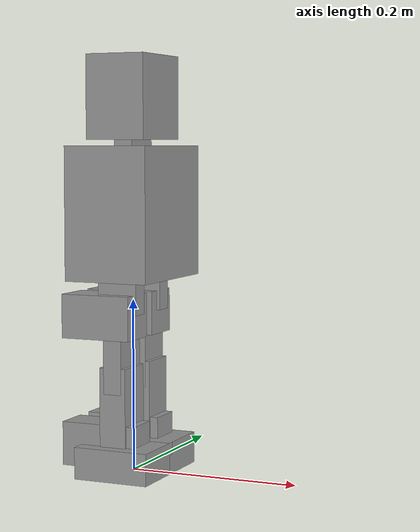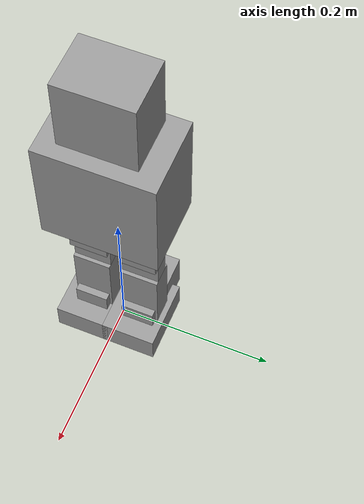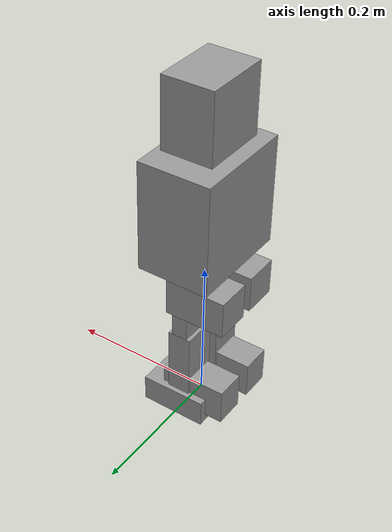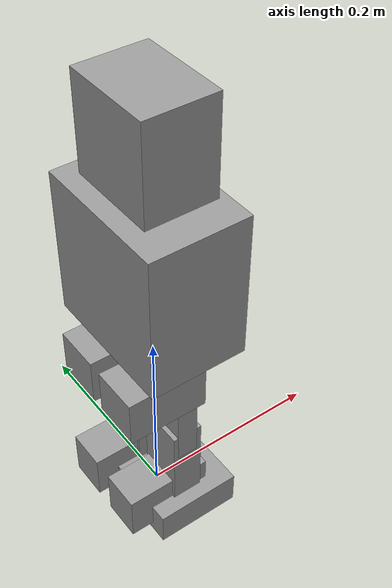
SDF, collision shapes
<?xml version='1.0'?>
<sdf version='1.6'>
  <model name='soccerbot_noarms'>
    <link name='base_link'>
    </link>
    <link name='torso'>
      <inertial>
        <mass>1</mass>
        <inertia>
          <ixx>0.003149</ixx>
          <ixy>0.000127</ixy>
          <ixz>0.000124</ixz>
          <iyy>0.004988</iyy>
          <iyz>8.9e-05</iyz>
          <izz>0.003395</izz>
        </inertia>
        <pose frame=''>0 0 0 0 -0 0</pose>
      </inertial>
      <pose frame=''>0 0 0.301418 -0.037717 1.57079 1.53308</pose>
      <gravity>1</gravity>
      <self_collide>0</self_collide>
      <kinematic>0</kinematic>
      <enable_wind>0</enable_wind>
      <visual name='visual'>
        <pose frame=''>-0.076 -0.05 -0.0725 0 -0 0</pose>
        <geometry>
          <mesh>
            <uri>model://soccer_description/meshes/Torso.stl</uri>
            <scale>0.001 0.001 0.001</scale>
          </mesh>
        </geometry>
        <material>
          <lighting>1</lighting>
          <script>
            <uri>file://media/materials/scripts/gazebo.material</uri>
            <name>Gazebo/Grey</name>
          </script>
          <shader type='vertex'>
            <normal_map>__default__</normal_map>
          </shader>
          <ambient>0.3 0.3 0.3 1</ambient>
          <diffuse>0.7 0.7 0.7 1</diffuse>
          <specular>0.01 0.01 0.01 1</specular>
          <emissive>0 0 0 1</emissive>
        </material>
        <transparency>0</transparency>
        <cast_shadows>1</cast_shadows>
      </visual>
      <collision name='collision'>
        <laser_retro>0</laser_retro>
        <max_contacts>10</max_contacts>
        <pose frame=''>0 0 0 0 -0 0</pose>
        <geometry>
          <box>
            <size>0.152 0.1 0.145</size>
          </box>
        </geometry>
        <surface>
          <friction>
            <ode>
              <mu>1</mu>
              <mu2>1</mu2>
              <fdir1>0 0 0</fdir1>
              <slip1>0</slip1>
              <slip2>0</slip2>
            </ode>
            <torsional>
              <coefficient>1</coefficient>
              <patch_radius>0</patch_radius>
              <surface_radius>0</surface_radius>
              <use_patch_radius>1</use_patch_radius>
              <ode>
                <slip>0</slip>
              </ode>
            </torsional>
          </friction>
          <bounce>
            <restitution_coefficient>0</restitution_coefficient>
            <threshold>1e+06</threshold>
          </bounce>
          <contact>
            <collide_without_contact>0</collide_without_contact>
            <collide_without_contact_bitmask>1</collide_without_contact_bitmask>
            <collide_bitmask>1</collide_bitmask>
            <ode>
              <soft_cfm>0</soft_cfm>
              <soft_erp>0.2</soft_erp>
              <kp>1e+13</kp>
              <kd>1</kd>
              <max_vel>0.01</max_vel>
              <min_depth>0</min_depth>
            </ode>
            <bullet>
              <split_impulse>1</split_impulse>
              <split_impulse_penetration_threshold>-0.01</split_impulse_penetration_threshold>
              <soft_cfm>0</soft_cfm>
              <soft_erp>0.2</soft_erp>
              <kp>1e+13</kp>
              <kd>1</kd>
            </bullet>
          </contact>
        </surface>
      </collision>
    </link>
    <link name='camera'>
      <inertial>
        <mass>1</mass>
        <inertia>
          <ixx>0.166667</ixx>
          <ixy>0</ixy>
          <ixz>0</ixz>
          <iyy>0.166667</iyy>
          <iyz>0</iyz>
          <izz>0.166667</izz>
        </inertia>
        <pose frame=''>0 0 0 0 -0 0</pose>
      </inertial>
      <pose frame=''>0.07 0 0.465818 0 -0 0</pose>
      <gravity>0</gravity>
      <self_collide>0</self_collide>
      <kinematic>0</kinematic>
      <enable_wind>0</enable_wind>
      <sensor name='camera1' type='camera'>
        <update_rate>30</update_rate>
        <camera name='__default__'>
          <horizontal_fov>1.39626</horizontal_fov>
          <image>
            <width>320</width>
            <height>240</height>
            <format>R8G8B8</format>
          </image>
          <clip>
            <near>1</near>
            <far>100</far>
          </clip>
          <noise>
            <type>gaussian</type>
            <mean>0</mean>
            <stddev>0.007</stddev>
          </noise>
        </camera>
        <always_on>1</always_on>
        <visualize>1</visualize>
        <plugin name='camera_controller' filename='libgazebo_ros_camera.so'>
          <alwaysOn>true</alwaysOn>
          <updateRate>0.0</updateRate>
          <cameraName>soccerbot/camera1</cameraName>
          <imageTopicName>image_raw</imageTopicName>
          <cameraInfoTopicName>camera_info</cameraInfoTopicName>
          <frameName>camera_link</frameName>
          <hackBaseline>0.07</hackBaseline>
          <distortionK1>0.0</distortionK1>
          <distortionK2>0.0</distortionK2>
          <distortionK3>0.0</distortionK3>
          <distortionT1>0.0</distortionT1>
          <distortionT2>0.0</distortionT2>
        </plugin>
      </sensor>
    </link>
    <link name='head'>
      <inertial>
        <mass>1</mass>
        <inertia>
          <ixx>0.166667</ixx>
          <ixy>0</ixy>
          <ixz>0</ixz>
          <iyy>0.166667</iyy>
          <iyz>0</iyz>
          <izz>0.166667</izz>
        </inertia>
        <pose frame=''>0 0 0 0 -0 0</pose>
      </inertial>
      <pose frame=''>0 0 0.395918 1.5708 -0 1.5708</pose>
      <gravity>1</gravity>
      <self_collide>0</self_collide>
      <kinematic>0</kinematic>
      <enable_wind>0</enable_wind>
      <visual name='visual'>
        <pose frame=''>0 0 0 0 -0 0</pose>
        <geometry>
          <mesh>
            <uri>model://soccer_description/meshes/Head.stl</uri>
            <scale>0.001 0.001 0.001</scale>
          </mesh>
        </geometry>
        <material>
          <lighting>1</lighting>
          <script>
            <uri>file://media/materials/scripts/gazebo.material</uri>
            <name>Gazebo/Grey</name>
          </script>
          <shader type='vertex'>
            <normal_map>__default__</normal_map>
          </shader>
          <ambient>0.3 0.3 0.3 1</ambient>
          <diffuse>0.7 0.7 0.7 1</diffuse>
          <specular>0.01 0.01 0.01 1</specular>
          <emissive>0 0 0 1</emissive>
        </material>
        <transparency>0</transparency>
        <cast_shadows>1</cast_shadows>
      </visual>
      <collision name='collision'>
        <laser_retro>0</laser_retro>
        <max_contacts>10</max_contacts>
        <pose frame=''>0 0.03648 0 0 -0 0</pose>
        <geometry>
          <box>
            <size>0.094 0.09596 0.0712</size>
          </box>
        </geometry>
        <surface>
          <friction>
            <ode>
              <mu>1</mu>
              <mu2>1</mu2>
              <fdir1>0 0 0</fdir1>
              <slip1>0</slip1>
              <slip2>0</slip2>
            </ode>
            <torsional>
              <coefficient>1</coefficient>
              <patch_radius>0</patch_radius>
              <surface_radius>0</surface_radius>
              <use_patch_radius>1</use_patch_radius>
              <ode>
                <slip>0</slip>
              </ode>
            </torsional>
          </friction>
          <bounce>
            <restitution_coefficient>0</restitution_coefficient>
            <threshold>1e+06</threshold>
          </bounce>
          <contact>
            <collide_without_contact>0</collide_without_contact>
            <collide_without_contact_bitmask>1</collide_without_contact_bitmask>
            <collide_bitmask>1</collide_bitmask>
            <ode>
              <soft_cfm>0</soft_cfm>
              <soft_erp>0.2</soft_erp>
              <kp>1e+13</kp>
              <kd>1</kd>
              <max_vel>0.01</max_vel>
              <min_depth>0</min_depth>
            </ode>
            <bullet>
              <split_impulse>1</split_impulse>
              <split_impulse_penetration_threshold>-0.01</split_impulse_penetration_threshold>
              <soft_cfm>0</soft_cfm>
              <soft_erp>0.2</soft_erp>
              <kp>1e+13</kp>
              <kd>1</kd>
            </bullet>
          </contact>
        </surface>
      </collision>
    </link>
    <link name='left_ankle'>
      <inertial>
        <mass>1</mass>
        <inertia>
          <ixx>0.166667</ixx>
          <ixy>0</ixy>
          <ixz>0</ixz>
          <iyy>0.166667</iyy>
          <iyz>0</iyz>
          <izz>0.166667</izz>
        </inertia>
        <pose frame=''>0 0 0 1.57073 -0 0</pose>
      </inertial>
      <pose frame=''>0 -0.0315 0.025328 1.57073 -0 0</pose>
      <gravity>1</gravity>
      <self_collide>0</self_collide>
      <kinematic>0</kinematic>
      <enable_wind>0</enable_wind>
      <visual name='visual'>
        <pose frame=''>0 0 0 0 -0 0</pose>
        <geometry>
          <mesh>
            <uri>model://soccer_description/meshes/Left Ankle.stl</uri>
            <scale>0.001 0.001 0.001</scale>
          </mesh>
        </geometry>
        <material>
          <lighting>1</lighting>
          <script>
            <uri>file://media/materials/scripts/gazebo.material</uri>
            <name>Gazebo/Grey</name>
          </script>
          <shader type='vertex'>
            <normal_map>__default__</normal_map>
          </shader>
          <ambient>0.3 0.3 0.3 1</ambient>
          <diffuse>0.7 0.7 0.7 1</diffuse>
          <specular>0.01 0.01 0.01 1</specular>
          <emissive>0 0 0 1</emissive>
        </material>
        <transparency>0</transparency>
        <cast_shadows>1</cast_shadows>
      </visual>
      <collision name='collision'>
        <laser_retro>0</laser_retro>
        <max_contacts>10</max_contacts>
        <pose frame=''>-0.020145 0.01031 0 0 -0 0</pose>
        <geometry>
          <box>
            <size>0.090769 0.0506 0.042</size>
          </box>
        </geometry>
        <surface>
          <friction>
            <ode>
              <mu>1</mu>
              <mu2>1</mu2>
              <fdir1>0 0 0</fdir1>
              <slip1>0</slip1>
              <slip2>0</slip2>
            </ode>
            <torsional>
              <coefficient>1</coefficient>
              <patch_radius>0</patch_radius>
              <surface_radius>0</surface_radius>
              <use_patch_radius>1</use_patch_radius>
              <ode>
                <slip>0</slip>
              </ode>
            </torsional>
          </friction>
          <bounce>
            <restitution_coefficient>0</restitution_coefficient>
            <threshold>1e+06</threshold>
          </bounce>
          <contact>
            <collide_without_contact>0</collide_without_contact>
            <collide_without_contact_bitmask>1</collide_without_contact_bitmask>
            <collide_bitmask>1</collide_bitmask>
            <ode>
              <soft_cfm>0</soft_cfm>
              <soft_erp>0.2</soft_erp>
              <kp>1e+13</kp>
              <kd>1</kd>
              <max_vel>0.01</max_vel>
              <min_depth>0</min_depth>
            </ode>
            <bullet>
              <split_impulse>1</split_impulse>
              <split_impulse_penetration_threshold>-0.01</split_impulse_penetration_threshold>
              <soft_cfm>0</soft_cfm>
              <soft_erp>0.2</soft_erp>
              <kp>1e+13</kp>
              <kd>1</kd>
            </bullet>
          </contact>
        </surface>
      </collision>
    </link>
    <link name='left_calve'>
      <inertial>
        <mass>1</mass>
        <inertia>
          <ixx>0.166667</ixx>
          <ixy>0</ixy>
          <ixz>0</ixz>
          <iyy>0.166667</iyy>
          <iyz>0</iyz>
          <izz>0.166667</izz>
        </inertia>
        <pose frame=''>0 0 0 0 -0 0</pose>
      </inertial>
      <pose frame=''>0 -0.0315 0.025328 1.57079 -0 0</pose>
      <gravity>1</gravity>
      <self_collide>0</self_collide>
      <kinematic>0</kinematic>
      <enable_wind>0</enable_wind>
      <visual name='visual'>
        <pose frame=''>0 0 0 0 -0 0</pose>
        <geometry>
          <mesh>
            <uri>model://soccer_description/meshes/Left Calve.stl</uri>
            <scale>0.001 0.001 0.001</scale>
          </mesh>
        </geometry>
        <material>
          <lighting>1</lighting>
          <script>
            <uri>file://media/materials/scripts/gazebo.material</uri>
            <name>Gazebo/Grey</name>
          </script>
          <shader type='vertex'>
            <normal_map>__default__</normal_map>
          </shader>
          <ambient>0.3 0.3 0.3 1</ambient>
          <diffuse>0.7 0.7 0.7 1</diffuse>
          <specular>0.01 0.01 0.01 1</specular>
          <emissive>0 0 0 1</emissive>
        </material>
        <transparency>0</transparency>
        <cast_shadows>1</cast_shadows>
      </visual>
      <collision name='collision'>
        <laser_retro>0</laser_retro>
        <max_contacts>10</max_contacts>
        <pose frame=''>0 0.04885 0 0 -0 0</pose>
        <geometry>
          <box>
            <size>0.031883 0.105683 0.048</size>
          </box>
        </geometry>
        <surface>
          <friction>
            <ode>
              <mu>1</mu>
              <mu2>1</mu2>
              <fdir1>0 0 0</fdir1>
              <slip1>0</slip1>
              <slip2>0</slip2>
            </ode>
            <torsional>
              <coefficient>1</coefficient>
              <patch_radius>0</patch_radius>
              <surface_radius>0</surface_radius>
              <use_patch_radius>1</use_patch_radius>
              <ode>
                <slip>0</slip>
              </ode>
            </torsional>
          </friction>
          <bounce>
            <restitution_coefficient>0</restitution_coefficient>
            <threshold>1e+06</threshold>
          </bounce>
          <contact>
            <collide_without_contact>0</collide_without_contact>
            <collide_without_contact_bitmask>1</collide_without_contact_bitmask>
            <collide_bitmask>1</collide_bitmask>
            <ode>
              <soft_cfm>0</soft_cfm>
              <soft_erp>0.2</soft_erp>
              <kp>1e+13</kp>
              <kd>1</kd>
              <max_vel>0.01</max_vel>
              <min_depth>0</min_depth>
            </ode>
            <bullet>
              <split_impulse>1</split_impulse>
              <split_impulse_penetration_threshold>-0.01</split_impulse_penetration_threshold>
              <soft_cfm>0</soft_cfm>
              <soft_erp>0.2</soft_erp>
              <kp>1e+13</kp>
              <kd>1</kd>
            </bullet>
          </contact>
        </surface>
      </collision>
    </link>
    <link name='left_foot'>
      <inertial>
        <mass>1</mass>
        <inertia>
          <ixx>0.166667</ixx>
          <ixy>0</ixy>
          <ixz>0</ixz>
          <iyy>0.166667</iyy>
          <iyz>0</iyz>
          <izz>0.166667</izz>
        </inertia>
        <pose frame=''>0 0 0 1.57073 -0 0</pose>
      </inertial>
      <pose frame=''>0 -0.0315 0.025328 1.57073 -0 0</pose>
      <gravity>1</gravity>
      <self_collide>0</self_collide>
      <kinematic>0</kinematic>
      <enable_wind>0</enable_wind>
      <visual name='visual'>
        <pose frame=''>0 0 0 0 -0 0</pose>
        <geometry>
          <mesh>
            <uri>model://soccer_description/meshes/Left Foot.stl</uri>
            <scale>0.001 0.001 0.001</scale>
          </mesh>
        </geometry>
        <material>
          <lighting>1</lighting>
          <script>
            <uri>file://media/materials/scripts/gazebo.material</uri>
            <name>Gazebo/Grey</name>
          </script>
          <shader type='vertex'>
            <normal_map>__default__</normal_map>
          </shader>
          <ambient>0.3 0.3 0.3 1</ambient>
          <diffuse>0.7 0.7 0.7 1</diffuse>
          <specular>0.01 0.01 0.01 1</specular>
          <emissive>0 0 0 1</emissive>
        </material>
        <transparency>0</transparency>
        <cast_shadows>1</cast_shadows>
      </visual>
      <collision name='collision'>
        <laser_retro>0</laser_retro>
        <max_contacts>10</max_contacts>
        <pose frame=''>0.004015 -0.00737 0.00385 0 -0 0</pose>
        <geometry>
          <box>
            <size>0.09 0.03674 0.07</size>
          </box>
        </geometry>
        <surface>
          <friction>
            <ode>
              <mu>1</mu>
              <mu2>1</mu2>
              <fdir1>0 0 0</fdir1>
              <slip1>0</slip1>
              <slip2>0</slip2>
            </ode>
            <torsional>
              <coefficient>1</coefficient>
              <patch_radius>0</patch_radius>
              <surface_radius>0</surface_radius>
              <use_patch_radius>1</use_patch_radius>
              <ode>
                <slip>0</slip>
              </ode>
            </torsional>
          </friction>
          <bounce>
            <restitution_coefficient>0</restitution_coefficient>
            <threshold>1e+06</threshold>
          </bounce>
          <contact>
            <collide_without_contact>0</collide_without_contact>
            <collide_without_contact_bitmask>1</collide_without_contact_bitmask>
            <collide_bitmask>1</collide_bitmask>
            <ode>
              <soft_cfm>0</soft_cfm>
              <soft_erp>0.2</soft_erp>
              <kp>1e+13</kp>
              <kd>1</kd>
              <max_vel>0.01</max_vel>
              <min_depth>0</min_depth>
            </ode>
            <bullet>
              <split_impulse>1</split_impulse>
              <split_impulse_penetration_threshold>-0.01</split_impulse_penetration_threshold>
              <soft_cfm>0</soft_cfm>
              <soft_erp>0.2</soft_erp>
              <kp>1e+13</kp>
              <kd>1</kd>
            </bullet>
          </contact>
        </surface>
      </collision>
    </link>
    <link name='left_hip_front'>
      <inertial>
        <mass>1</mass>
        <inertia>
          <ixx>0.166667</ixx>
          <ixy>0</ixy>
          <ixz>0</ixz>
          <iyy>0.166667</iyy>
          <iyz>0</iyz>
          <izz>0.166667</izz>
        </inertia>
        <pose frame=''>0 0 0 0 -0 0</pose>
      </inertial>
      <pose frame=''>0 -0.0315 0.197 1.57079 -0 0</pose>
      <gravity>1</gravity>
      <self_collide>0</self_collide>
      <kinematic>0</kinematic>
      <enable_wind>0</enable_wind>
      <visual name='visual'>
        <pose frame=''>0 0 0 0 -0 0</pose>
        <geometry>
          <mesh>
            <uri>model://soccer_description/meshes/Left Hip Front.stl</uri>
            <scale>0.001 0.001 0.001</scale>
          </mesh>
        </geometry>
        <material>
          <lighting>1</lighting>
          <script>
            <uri>file://media/materials/scripts/gazebo.material</uri>
            <name>Gazebo/Grey</name>
          </script>
          <shader type='vertex'>
            <normal_map>__default__</normal_map>
          </shader>
          <ambient>0.3 0.3 0.3 1</ambient>
          <diffuse>0.7 0.7 0.7 1</diffuse>
          <specular>0.01 0.01 0.01 1</specular>
          <emissive>0 0 0 1</emissive>
        </material>
        <transparency>0</transparency>
        <cast_shadows>1</cast_shadows>
      </visual>
      <collision name='collision'>
        <laser_retro>0</laser_retro>
        <max_contacts>10</max_contacts>
        <pose frame=''>-0.02187 -0.013322 0 0 -0 0</pose>
        <geometry>
          <box>
            <size>0.083747 0.0506 0.04885</size>
          </box>
        </geometry>
        <surface>
          <friction>
            <ode>
              <mu>1</mu>
              <mu2>1</mu2>
              <fdir1>0 0 0</fdir1>
              <slip1>0</slip1>
              <slip2>0</slip2>
            </ode>
            <torsional>
              <coefficient>1</coefficient>
              <patch_radius>0</patch_radius>
              <surface_radius>0</surface_radius>
              <use_patch_radius>1</use_patch_radius>
              <ode>
                <slip>0</slip>
              </ode>
            </torsional>
          </friction>
          <bounce>
            <restitution_coefficient>0</restitution_coefficient>
            <threshold>1e+06</threshold>
          </bounce>
          <contact>
            <collide_without_contact>0</collide_without_contact>
            <collide_without_contact_bitmask>1</collide_without_contact_bitmask>
            <collide_bitmask>1</collide_bitmask>
            <ode>
              <soft_cfm>0</soft_cfm>
              <soft_erp>0.2</soft_erp>
              <kp>1e+13</kp>
              <kd>1</kd>
              <max_vel>0.01</max_vel>
              <min_depth>0</min_depth>
            </ode>
            <bullet>
              <split_impulse>1</split_impulse>
              <split_impulse_penetration_threshold>-0.01</split_impulse_penetration_threshold>
              <soft_cfm>0</soft_cfm>
              <soft_erp>0.2</soft_erp>
              <kp>1e+13</kp>
              <kd>1</kd>
            </bullet>
          </contact>
        </surface>
      </collision>
    </link>
    <link name='left_hip_side'>
      <inertial>
        <mass>1</mass>
        <inertia>
          <ixx>0.166667</ixx>
          <ixy>0</ixy>
          <ixz>0</ixz>
          <iyy>0.166667</iyy>
          <iyz>0</iyz>
          <izz>0.166667</izz>
        </inertia>
        <pose frame=''>0 0 0 0 -0 0</pose>
      </inertial>
      <pose frame=''>0 -0.031494 0.197 1.5708 -0 1.5708</pose>
      <gravity>1</gravity>
      <self_collide>0</self_collide>
      <kinematic>0</kinematic>
      <enable_wind>0</enable_wind>
      <visual name='visual'>
        <pose frame=''>0 0 0 0 -0 0</pose>
        <geometry>
          <mesh>
            <uri>model://soccer_description/meshes/Left Hip Side.stl</uri>
            <scale>0.001 0.001 0.001</scale>
          </mesh>
        </geometry>
        <material>
          <lighting>1</lighting>
          <script>
            <uri>file://media/materials/scripts/gazebo.material</uri>
            <name>Gazebo/Grey</name>
          </script>
          <shader type='vertex'>
            <normal_map>__default__</normal_map>
          </shader>
          <ambient>0.3 0.3 0.3 1</ambient>
          <diffuse>0.7 0.7 0.7 1</diffuse>
          <specular>0.01 0.01 0.01 1</specular>
          <emissive>0 0 0 1</emissive>
        </material>
        <transparency>0</transparency>
        <cast_shadows>1</cast_shadows>
      </visual>
      <collision name='collision'>
        <laser_retro>0</laser_retro>
        <max_contacts>10</max_contacts>
        <pose frame=''>0 0.009 0 0 -0 0</pose>
        <geometry>
          <box>
            <size>0.022 0.039 0.0475</size>
          </box>
        </geometry>
        <surface>
          <friction>
            <ode>
              <mu>1</mu>
              <mu2>1</mu2>
              <fdir1>0 0 0</fdir1>
              <slip1>0</slip1>
              <slip2>0</slip2>
            </ode>
            <torsional>
              <coefficient>1</coefficient>
              <patch_radius>0</patch_radius>
              <surface_radius>0</surface_radius>
              <use_patch_radius>1</use_patch_radius>
              <ode>
                <slip>0</slip>
              </ode>
            </torsional>
          </friction>
          <bounce>
            <restitution_coefficient>0</restitution_coefficient>
            <threshold>1e+06</threshold>
          </bounce>
          <contact>
            <collide_without_contact>0</collide_without_contact>
            <collide_without_contact_bitmask>1</collide_without_contact_bitmask>
            <collide_bitmask>1</collide_bitmask>
            <ode>
              <soft_cfm>0</soft_cfm>
              <soft_erp>0.2</soft_erp>
              <kp>1e+13</kp>
              <kd>1</kd>
              <max_vel>0.01</max_vel>
              <min_depth>0</min_depth>
            </ode>
            <bullet>
              <split_impulse>1</split_impulse>
              <split_impulse_penetration_threshold>-0.01</split_impulse_penetration_threshold>
              <soft_cfm>0</soft_cfm>
              <soft_erp>0.2</soft_erp>
              <kp>1e+13</kp>
              <kd>1</kd>
            </bullet>
          </contact>
        </surface>
      </collision>
    </link>
    <link name='left_thigh'>
      <inertial>
        <mass>1</mass>
        <inertia>
          <ixx>0.166667</ixx>
          <ixy>0</ixy>
          <ixz>0</ixz>
          <iyy>0.166667</iyy>
          <iyz>0</iyz>
          <izz>0.166667</izz>
        </inertia>
        <pose frame=''>0 0 0 0 -0 0</pose>
      </inertial>
      <pose frame=''>0 -0.0315 0.197 1.5708 -0 0</pose>
      <gravity>1</gravity>
      <self_collide>0</self_collide>
      <kinematic>0</kinematic>
      <enable_wind>0</enable_wind>
      <visual name='visual'>
        <pose frame=''>0 0 0 0 -0 0</pose>
        <geometry>
          <mesh>
            <uri>model://soccer_description/meshes/Left Thigh.stl</uri>
            <scale>0.001 0.001 0.001</scale>
          </mesh>
        </geometry>
        <material>
          <lighting>1</lighting>
          <script>
            <uri>file://media/materials/scripts/gazebo.material</uri>
            <name>Gazebo/Grey</name>
          </script>
          <shader type='vertex'>
            <normal_map>__default__</normal_map>
          </shader>
          <ambient>0.3 0.3 0.3 1</ambient>
          <diffuse>0.7 0.7 0.7 1</diffuse>
          <specular>0.01 0.01 0.01 1</specular>
          <emissive>0 0 0 1</emissive>
        </material>
        <transparency>0</transparency>
        <cast_shadows>1</cast_shadows>
      </visual>
      <collision name='collision'>
        <laser_retro>0</laser_retro>
        <max_contacts>10</max_contacts>
        <pose frame=''>0 -0.0445 0 0 -0 0</pose>
        <geometry>
          <box>
            <size>0.022 0.111 0.048</size>
          </box>
        </geometry>
        <surface>
          <friction>
            <ode>
              <mu>1</mu>
              <mu2>1</mu2>
              <fdir1>0 0 0</fdir1>
              <slip1>0</slip1>
              <slip2>0</slip2>
            </ode>
            <torsional>
              <coefficient>1</coefficient>
              <patch_radius>0</patch_radius>
              <surface_radius>0</surface_radius>
              <use_patch_radius>1</use_patch_radius>
              <ode>
                <slip>0</slip>
              </ode>
            </torsional>
          </friction>
          <bounce>
            <restitution_coefficient>0</restitution_coefficient>
            <threshold>1e+06</threshold>
          </bounce>
          <contact>
            <collide_without_contact>0</collide_without_contact>
            <collide_without_contact_bitmask>1</collide_without_contact_bitmask>
            <collide_bitmask>1</collide_bitmask>
            <ode>
              <soft_cfm>0</soft_cfm>
              <soft_erp>0.2</soft_erp>
              <kp>1e+13</kp>
              <kd>1</kd>
              <max_vel>0.01</max_vel>
              <min_depth>0</min_depth>
            </ode>
            <bullet>
              <split_impulse>1</split_impulse>
              <split_impulse_penetration_threshold>-0.01</split_impulse_penetration_threshold>
              <soft_cfm>0</soft_cfm>
              <soft_erp>0.2</soft_erp>
              <kp>1e+13</kp>
              <kd>1</kd>
            </bullet>
          </contact>
        </surface>
      </collision>
    </link>
    <link name='neck'>
      <inertial>
        <mass>1</mass>
        <inertia>
          <ixx>0.166667</ixx>
          <ixy>0</ixy>
          <ixz>0</ixz>
          <iyy>0.166667</iyy>
          <iyz>0</iyz>
          <izz>0.166667</izz>
        </inertia>
        <pose frame=''>0 0 0 0 -0 0</pose>
      </inertial>
      <pose frame=''>0 0 0.373918 1.57079 -0 1.57079</pose>
      <gravity>1</gravity>
      <self_collide>0</self_collide>
      <kinematic>0</kinematic>
      <enable_wind>0</enable_wind>
      <visual name='visual'>
        <pose frame=''>0 0 0 0 -0 0</pose>
        <geometry>
          <mesh>
            <uri>model://soccer_description/meshes/Neck.stl</uri>
            <scale>0.001 0.001 0.001</scale>
          </mesh>
        </geometry>
        <material>
          <lighting>1</lighting>
          <script>
            <uri>file://media/materials/scripts/gazebo.material</uri>
            <name>Gazebo/Grey</name>
          </script>
          <shader type='vertex'>
            <normal_map>__default__</normal_map>
          </shader>
          <ambient>0.3 0.3 0.3 1</ambient>
          <diffuse>0.7 0.7 0.7 1</diffuse>
          <specular>0.01 0.01 0.01 1</specular>
          <emissive>0 0 0 1</emissive>
        </material>
        <transparency>0</transparency>
        <cast_shadows>1</cast_shadows>
      </visual>
      <collision name='collision'>
        <laser_retro>0</laser_retro>
        <max_contacts>10</max_contacts>
        <pose frame=''>0 0.0165 0 0 -0 0</pose>
        <geometry>
          <box>
            <size>0.0523 0.033 0.022</size>
          </box>
        </geometry>
        <surface>
          <friction>
            <ode>
              <mu>1</mu>
              <mu2>1</mu2>
              <fdir1>0 0 0</fdir1>
              <slip1>0</slip1>
              <slip2>0</slip2>
            </ode>
            <torsional>
              <coefficient>1</coefficient>
              <patch_radius>0</patch_radius>
              <surface_radius>0</surface_radius>
              <use_patch_radius>1</use_patch_radius>
              <ode>
                <slip>0</slip>
              </ode>
            </torsional>
          </friction>
          <bounce>
            <restitution_coefficient>0</restitution_coefficient>
            <threshold>1e+06</threshold>
          </bounce>
          <contact>
            <collide_without_contact>0</collide_without_contact>
            <collide_without_contact_bitmask>1</collide_without_contact_bitmask>
            <collide_bitmask>1</collide_bitmask>
            <ode>
              <soft_cfm>0</soft_cfm>
              <soft_erp>0.2</soft_erp>
              <kp>1e+13</kp>
              <kd>1</kd>
              <max_vel>0.01</max_vel>
              <min_depth>0</min_depth>
            </ode>
            <bullet>
              <split_impulse>1</split_impulse>
              <split_impulse_penetration_threshold>-0.01</split_impulse_penetration_threshold>
              <soft_cfm>0</soft_cfm>
              <soft_erp>0.2</soft_erp>
              <kp>1e+13</kp>
              <kd>1</kd>
            </bullet>
          </contact>
        </surface>
      </collision>
    </link>
    <link name='right_ankle'>
      <inertial>
        <mass>1</mass>
        <inertia>
          <ixx>0.166667</ixx>
          <ixy>0</ixy>
          <ixz>0</ixz>
          <iyy>0.166667</iyy>
          <iyz>0</iyz>
          <izz>0.166667</izz>
        </inertia>
        <pose frame=''>0 0 0 1.57073 -0 0</pose>
      </inertial>
      <pose frame=''>0 0.031494 0.025328 1.57073 -0 0</pose>
      <gravity>1</gravity>
      <self_collide>0</self_collide>
      <kinematic>0</kinematic>
      <enable_wind>0</enable_wind>
      <visual name='visual'>
        <pose frame=''>0 0 0 0 -0 0</pose>
        <geometry>
          <mesh>
            <uri>model://soccer_description/meshes/Right Ankle.stl</uri>
            <scale>0.001 0.001 0.001</scale>
          </mesh>
        </geometry>
        <material>
          <lighting>1</lighting>
          <script>
            <uri>file://media/materials/scripts/gazebo.material</uri>
            <name>Gazebo/Grey</name>
          </script>
          <shader type='vertex'>
            <normal_map>__default__</normal_map>
          </shader>
          <ambient>0.3 0.3 0.3 1</ambient>
          <diffuse>0.7 0.7 0.7 1</diffuse>
          <specular>0.01 0.01 0.01 1</specular>
          <emissive>0 0 0 1</emissive>
        </material>
        <transparency>0</transparency>
        <cast_shadows>1</cast_shadows>
      </visual>
      <collision name='collision'>
        <laser_retro>0</laser_retro>
        <max_contacts>10</max_contacts>
        <pose frame=''>-0.020145 0.01031 0 0 -0 0</pose>
        <geometry>
          <box>
            <size>0.090769 0.0506 0.042</size>
          </box>
        </geometry>
        <surface>
          <friction>
            <ode>
              <mu>1</mu>
              <mu2>1</mu2>
              <fdir1>0 0 0</fdir1>
              <slip1>0</slip1>
              <slip2>0</slip2>
            </ode>
            <torsional>
              <coefficient>1</coefficient>
              <patch_radius>0</patch_radius>
              <surface_radius>0</surface_radius>
              <use_patch_radius>1</use_patch_radius>
              <ode>
                <slip>0</slip>
              </ode>
            </torsional>
          </friction>
          <bounce>
            <restitution_coefficient>0</restitution_coefficient>
            <threshold>1e+06</threshold>
          </bounce>
          <contact>
            <collide_without_contact>0</collide_without_contact>
            <collide_without_contact_bitmask>1</collide_without_contact_bitmask>
            <collide_bitmask>1</collide_bitmask>
            <ode>
              <soft_cfm>0</soft_cfm>
              <soft_erp>0.2</soft_erp>
              <kp>1e+13</kp>
              <kd>1</kd>
              <max_vel>0.01</max_vel>
              <min_depth>0</min_depth>
            </ode>
            <bullet>
              <split_impulse>1</split_impulse>
              <split_impulse_penetration_threshold>-0.01</split_impulse_penetration_threshold>
              <soft_cfm>0</soft_cfm>
              <soft_erp>0.2</soft_erp>
              <kp>1e+13</kp>
              <kd>1</kd>
            </bullet>
          </contact>
        </surface>
      </collision>
    </link>
    <link name='right_calve'>
      <inertial>
        <mass>1</mass>
        <inertia>
          <ixx>0.166667</ixx>
          <ixy>0</ixy>
          <ixz>0</ixz>
          <iyy>0.166667</iyy>
          <iyz>0</iyz>
          <izz>0.166667</izz>
        </inertia>
        <pose frame=''>0 0 0 0 -0 0</pose>
      </inertial>
      <pose frame=''>0 0.031494 0.025328 1.57079 -0 0</pose>
      <gravity>1</gravity>
      <self_collide>0</self_collide>
      <kinematic>0</kinematic>
      <enable_wind>0</enable_wind>
      <visual name='visual'>
        <pose frame=''>0 0 0 0 -0 0</pose>
        <geometry>
          <mesh>
            <uri>model://soccer_description/meshes/Right Calve.stl</uri>
            <scale>0.001 0.001 0.001</scale>
          </mesh>
        </geometry>
        <material>
          <lighting>1</lighting>
          <script>
            <uri>file://media/materials/scripts/gazebo.material</uri>
            <name>Gazebo/Grey</name>
          </script>
          <shader type='vertex'>
            <normal_map>__default__</normal_map>
          </shader>
          <ambient>0.3 0.3 0.3 1</ambient>
          <diffuse>0.7 0.7 0.7 1</diffuse>
          <specular>0.01 0.01 0.01 1</specular>
          <emissive>0 0 0 1</emissive>
        </material>
        <transparency>0</transparency>
        <cast_shadows>1</cast_shadows>
      </visual>
      <collision name='collision'>
        <laser_retro>0</laser_retro>
        <max_contacts>10</max_contacts>
        <pose frame=''>0 0.04885 0 0 -0 0</pose>
        <geometry>
          <box>
            <size>0.031883 0.105683 0.048</size>
          </box>
        </geometry>
        <surface>
          <friction>
            <ode>
              <mu>1</mu>
              <mu2>1</mu2>
              <fdir1>0 0 0</fdir1>
              <slip1>0</slip1>
              <slip2>0</slip2>
            </ode>
            <torsional>
              <coefficient>1</coefficient>
              <patch_radius>0</patch_radius>
              <surface_radius>0</surface_radius>
              <use_patch_radius>1</use_patch_radius>
              <ode>
                <slip>0</slip>
              </ode>
            </torsional>
          </friction>
          <bounce>
            <restitution_coefficient>0</restitution_coefficient>
            <threshold>1e+06</threshold>
          </bounce>
          <contact>
            <collide_without_contact>0</collide_without_contact>
            <collide_without_contact_bitmask>1</collide_without_contact_bitmask>
            <collide_bitmask>1</collide_bitmask>
            <ode>
              <soft_cfm>0</soft_cfm>
              <soft_erp>0.2</soft_erp>
              <kp>1e+13</kp>
              <kd>1</kd>
              <max_vel>0.01</max_vel>
              <min_depth>0</min_depth>
            </ode>
            <bullet>
              <split_impulse>1</split_impulse>
              <split_impulse_penetration_threshold>-0.01</split_impulse_penetration_threshold>
              <soft_cfm>0</soft_cfm>
              <soft_erp>0.2</soft_erp>
              <kp>1e+13</kp>
              <kd>1</kd>
            </bullet>
          </contact>
        </surface>
      </collision>
    </link>
    <link name='right_foot'>
      <inertial>
        <mass>1</mass>
        <inertia>
          <ixx>0.166667</ixx>
          <ixy>0</ixy>
          <ixz>0</ixz>
          <iyy>0.166667</iyy>
          <iyz>0</iyz>
          <izz>0.166667</izz>
        </inertia>
        <pose frame=''>0 0 0 1.57073 -0 0</pose>
      </inertial>
      <pose frame=''>0 0.0315 0.025328 1.57073 -0 0</pose>
      <gravity>1</gravity>
      <self_collide>0</self_collide>
      <kinematic>0</kinematic>
      <enable_wind>0</enable_wind>
      <visual name='visual'>
        <pose frame=''>0 0 0 0 -0 0</pose>
        <geometry>
          <mesh>
            <uri>model://soccer_description/meshes/Right foot.stl</uri>
            <scale>0.001 0.001 0.001</scale>
          </mesh>
        </geometry>
        <material>
          <lighting>1</lighting>
          <script>
            <uri>file://media/materials/scripts/gazebo.material</uri>
            <name>Gazebo/Grey</name>
          </script>
          <shader type='vertex'>
            <normal_map>__default__</normal_map>
          </shader>
          <ambient>0.3 0.3 0.3 1</ambient>
          <diffuse>0.7 0.7 0.7 1</diffuse>
          <specular>0.01 0.01 0.01 1</specular>
          <emissive>0 0 0 1</emissive>
        </material>
        <transparency>0</transparency>
        <cast_shadows>1</cast_shadows>
      </visual>
      <collision name='collision'>
        <laser_retro>0</laser_retro>
        <max_contacts>10</max_contacts>
        <pose frame=''>0.004015 -0.00737 0.00385 0 -0 0</pose>
        <geometry>
          <box>
            <size>0.09 0.03674 0.07</size>
          </box>
        </geometry>
        <surface>
          <friction>
            <ode>
              <mu>1</mu>
              <mu2>1</mu2>
              <fdir1>0 0 0</fdir1>
              <slip1>0</slip1>
              <slip2>0</slip2>
            </ode>
            <torsional>
              <coefficient>1</coefficient>
              <patch_radius>0</patch_radius>
              <surface_radius>0</surface_radius>
              <use_patch_radius>1</use_patch_radius>
              <ode>
                <slip>0</slip>
              </ode>
            </torsional>
          </friction>
          <bounce>
            <restitution_coefficient>0</restitution_coefficient>
            <threshold>1e+06</threshold>
          </bounce>
          <contact>
            <collide_without_contact>0</collide_without_contact>
            <collide_without_contact_bitmask>1</collide_without_contact_bitmask>
            <collide_bitmask>1</collide_bitmask>
            <ode>
              <soft_cfm>0</soft_cfm>
              <soft_erp>0.2</soft_erp>
              <kp>1e+13</kp>
              <kd>1</kd>
              <max_vel>0.01</max_vel>
              <min_depth>0</min_depth>
            </ode>
            <bullet>
              <split_impulse>1</split_impulse>
              <split_impulse_penetration_threshold>-0.01</split_impulse_penetration_threshold>
              <soft_cfm>0</soft_cfm>
              <soft_erp>0.2</soft_erp>
              <kp>1e+13</kp>
              <kd>1</kd>
            </bullet>
          </contact>
        </surface>
      </collision>
    </link>
    <link name='right_hip_front'>
      <inertial>
        <mass>1</mass>
        <inertia>
          <ixx>0.166667</ixx>
          <ixy>0</ixy>
          <ixz>0</ixz>
          <iyy>0.166667</iyy>
          <iyz>0</iyz>
          <izz>0.166667</izz>
        </inertia>
        <pose frame=''>0 0 0 0 -0 0</pose>
      </inertial>
      <pose frame=''>0 0.031494 0.197 1.57079 -0 0</pose>
      <gravity>1</gravity>
      <self_collide>0</self_collide>
      <kinematic>0</kinematic>
      <enable_wind>0</enable_wind>
      <visual name='visual'>
        <pose frame=''>0 0 0 0 -0 0</pose>
        <geometry>
          <mesh>
            <uri>model://soccer_description/meshes/Right Hip Front.stl</uri>
            <scale>0.001 0.001 0.001</scale>
          </mesh>
        </geometry>
        <material>
          <lighting>1</lighting>
          <script>
            <uri>file://media/materials/scripts/gazebo.material</uri>
            <name>Gazebo/Grey</name>
          </script>
          <shader type='vertex'>
            <normal_map>__default__</normal_map>
          </shader>
          <ambient>0.3 0.3 0.3 1</ambient>
          <diffuse>0.7 0.7 0.7 1</diffuse>
          <specular>0.01 0.01 0.01 1</specular>
          <emissive>0 0 0 1</emissive>
        </material>
        <transparency>0</transparency>
        <cast_shadows>1</cast_shadows>
      </visual>
      <collision name='collision'>
        <laser_retro>0</laser_retro>
        <max_contacts>10</max_contacts>
        <pose frame=''>-0.02187 -0.013322 0 0 -0 0</pose>
        <geometry>
          <box>
            <size>0.083747 0.0506 0.04885</size>
          </box>
        </geometry>
        <surface>
          <friction>
            <ode>
              <mu>1</mu>
              <mu2>1</mu2>
              <fdir1>0 0 0</fdir1>
              <slip1>0</slip1>
              <slip2>0</slip2>
            </ode>
            <torsional>
              <coefficient>1</coefficient>
              <patch_radius>0</patch_radius>
              <surface_radius>0</surface_radius>
              <use_patch_radius>1</use_patch_radius>
              <ode>
                <slip>0</slip>
              </ode>
            </torsional>
          </friction>
          <bounce>
            <restitution_coefficient>0</restitution_coefficient>
            <threshold>1e+06</threshold>
          </bounce>
          <contact>
            <collide_without_contact>0</collide_without_contact>
            <collide_without_contact_bitmask>1</collide_without_contact_bitmask>
            <collide_bitmask>1</collide_bitmask>
            <ode>
              <soft_cfm>0</soft_cfm>
              <soft_erp>0.2</soft_erp>
              <kp>1e+13</kp>
              <kd>1</kd>
              <max_vel>0.01</max_vel>
              <min_depth>0</min_depth>
            </ode>
            <bullet>
              <split_impulse>1</split_impulse>
              <split_impulse_penetration_threshold>-0.01</split_impulse_penetration_threshold>
              <soft_cfm>0</soft_cfm>
              <soft_erp>0.2</soft_erp>
              <kp>1e+13</kp>
              <kd>1</kd>
            </bullet>
          </contact>
        </surface>
      </collision>
    </link>
    <link name='right_hip_side'>
      <inertial>
        <mass>1</mass>
        <inertia>
          <ixx>0.166667</ixx>
          <ixy>0</ixy>
          <ixz>0</ixz>
          <iyy>0.166667</iyy>
          <iyz>0</iyz>
          <izz>0.166667</izz>
        </inertia>
        <pose frame=''>0 0 0 0 -0 0</pose>
      </inertial>
      <pose frame=''>0 0.031494 0.197 1.5708 -0 1.5708</pose>
      <gravity>1</gravity>
      <self_collide>0</self_collide>
      <kinematic>0</kinematic>
      <enable_wind>0</enable_wind>
      <visual name='visual'>
        <pose frame=''>0 0 0 0 -0 0</pose>
        <geometry>
          <mesh>
            <uri>model://soccer_description/meshes/Right Hip Side.stl</uri>
            <scale>0.001 0.001 0.001</scale>
          </mesh>
        </geometry>
        <material>
          <lighting>1</lighting>
          <script>
            <uri>file://media/materials/scripts/gazebo.material</uri>
            <name>Gazebo/Grey</name>
          </script>
          <shader type='vertex'>
            <normal_map>__default__</normal_map>
          </shader>
          <ambient>0.3 0.3 0.3 1</ambient>
          <diffuse>0.7 0.7 0.7 1</diffuse>
          <specular>0.01 0.01 0.01 1</specular>
          <emissive>0 0 0 1</emissive>
        </material>
        <transparency>0</transparency>
        <cast_shadows>1</cast_shadows>
      </visual>
      <collision name='collision'>
        <laser_retro>0</laser_retro>
        <max_contacts>10</max_contacts>
        <pose frame=''>0 0.009 0 0 -0 0</pose>
        <geometry>
          <box>
            <size>0.022 0.039 0.0475</size>
          </box>
        </geometry>
        <surface>
          <friction>
            <ode>
              <mu>1</mu>
              <mu2>1</mu2>
              <fdir1>0 0 0</fdir1>
              <slip1>0</slip1>
              <slip2>0</slip2>
            </ode>
            <torsional>
              <coefficient>1</coefficient>
              <patch_radius>0</patch_radius>
              <surface_radius>0</surface_radius>
              <use_patch_radius>1</use_patch_radius>
              <ode>
                <slip>0</slip>
              </ode>
            </torsional>
          </friction>
          <bounce>
            <restitution_coefficient>0</restitution_coefficient>
            <threshold>1e+06</threshold>
          </bounce>
          <contact>
            <collide_without_contact>0</collide_without_contact>
            <collide_without_contact_bitmask>1</collide_without_contact_bitmask>
            <collide_bitmask>1</collide_bitmask>
            <ode>
              <soft_cfm>0</soft_cfm>
              <soft_erp>0.2</soft_erp>
              <kp>1e+13</kp>
              <kd>1</kd>
              <max_vel>0.01</max_vel>
              <min_depth>0</min_depth>
            </ode>
            <bullet>
              <split_impulse>1</split_impulse>
              <split_impulse_penetration_threshold>-0.01</split_impulse_penetration_threshold>
              <soft_cfm>0</soft_cfm>
              <soft_erp>0.2</soft_erp>
              <kp>1e+13</kp>
              <kd>1</kd>
            </bullet>
          </contact>
        </surface>
      </collision>
    </link>
    <link name='right_thigh'>
      <inertial>
        <mass>1</mass>
        <inertia>
          <ixx>0.166667</ixx>
          <ixy>0</ixy>
          <ixz>0</ixz>
          <iyy>0.166667</iyy>
          <iyz>0</iyz>
          <izz>0.166667</izz>
        </inertia>
        <pose frame=''>0 0 0 0 -0 0</pose>
      </inertial>
      <pose frame=''>0 0.031494 0.197 1.5708 -0 0</pose>
      <gravity>1</gravity>
      <self_collide>0</self_collide>
      <kinematic>0</kinematic>
      <enable_wind>0</enable_wind>
      <visual name='visual'>
        <pose frame=''>0 0 0 0 -0 0</pose>
        <geometry>
          <mesh>
            <uri>model://soccer_description/meshes/Right Thigh.stl</uri>
            <scale>0.001 0.001 0.001</scale>
          </mesh>
        </geometry>
        <material>
          <lighting>1</lighting>
          <script>
            <uri>file://media/materials/scripts/gazebo.material</uri>
            <name>Gazebo/Grey</name>
          </script>
          <shader type='vertex'>
            <normal_map>__default__</normal_map>
          </shader>
          <ambient>0.3 0.3 0.3 1</ambient>
          <diffuse>0.7 0.7 0.7 1</diffuse>
          <specular>0.01 0.01 0.01 1</specular>
          <emissive>0 0 0 1</emissive>
        </material>
        <transparency>0</transparency>
        <cast_shadows>1</cast_shadows>
      </visual>
      <collision name='collision'>
        <laser_retro>0</laser_retro>
        <max_contacts>10</max_contacts>
        <pose frame=''>0 -0.0445 0 0 -0 0</pose>
        <geometry>
          <box>
            <size>0.022 0.111 0.048</size>
          </box>
        </geometry>
        <surface>
          <friction>
            <ode>
              <mu>1</mu>
              <mu2>1</mu2>
              <fdir1>0 0 0</fdir1>
              <slip1>0</slip1>
              <slip2>0</slip2>
            </ode>
            <torsional>
              <coefficient>1</coefficient>
              <patch_radius>0</patch_radius>
              <surface_radius>0</surface_radius>
              <use_patch_radius>1</use_patch_radius>
              <ode>
                <slip>0</slip>
              </ode>
            </torsional>
          </friction>
          <bounce>
            <restitution_coefficient>0</restitution_coefficient>
            <threshold>1e+06</threshold>
          </bounce>
          <contact>
            <collide_without_contact>0</collide_without_contact>
            <collide_without_contact_bitmask>1</collide_without_contact_bitmask>
            <collide_bitmask>1</collide_bitmask>
            <ode>
              <soft_cfm>0</soft_cfm>
              <soft_erp>0.2</soft_erp>
              <kp>1e+13</kp>
              <kd>1</kd>
              <max_vel>0.01</max_vel>
              <min_depth>0</min_depth>
            </ode>
            <bullet>
              <split_impulse>1</split_impulse>
              <split_impulse_penetration_threshold>-0.01</split_impulse_penetration_threshold>
              <soft_cfm>0</soft_cfm>
              <soft_erp>0.2</soft_erp>
              <kp>1e+13</kp>
              <kd>1</kd>
            </bullet>
          </contact>
        </surface>
      </collision>
    </link>
    <joint name='base_link_torso' type='fixed'>
      <parent>base_link</parent>
      <child>torso</child>
    </joint>
    <joint name='head_camera' type='fixed'>
      <parent>head</parent>
      <child>camera</child>
      <pose frame=''>0 0 0 0 -0 0</pose>
      <physics>
        <ode>
          <limit>
            <cfm>0</cfm>
            <erp>0.2</erp>
          </limit>
          <suspension>
            <cfm>0</cfm>
            <erp>0.2</erp>
          </suspension>
        </ode>
      </physics>
    </joint>
    <joint name='left_ankle_foot' type='revolute'>
      <parent>left_ankle</parent>
      <child>left_foot</child>
      <pose frame=''>0 0 0 0 -0 0</pose>
      <axis>
        <xyz>1 0 0</xyz>
        <use_parent_model_frame>0</use_parent_model_frame>
        <limit>
          <lower>-1.79769e+308</lower>
          <upper>1.79769e+308</upper>
          <effort>-1</effort>
          <velocity>-1</velocity>
        </limit>
        <dynamics>
          <spring_reference>0</spring_reference>
          <spring_stiffness>0</spring_stiffness>
          <damping>1</damping>
          <friction>1</friction>
        </dynamics>
      </axis>
      <physics>
        <ode>
          <limit>
            <cfm>0</cfm>
            <erp>0.2</erp>
          </limit>
          <suspension>
            <cfm>0</cfm>
            <erp>0.2</erp>
          </suspension>
        </ode>
      </physics>
    </joint>
    <joint name='left_calve_ankle' type='revolute'>
      <parent>left_calve</parent>
      <child>left_ankle</child>
      <pose frame=''>0 0 0 0 -0 0</pose>
      <axis>
        <xyz>0 0 1</xyz>
        <use_parent_model_frame>0</use_parent_model_frame>
        <limit>
          <lower>-1.79769e+308</lower>
          <upper>1.79769e+308</upper>
          <effort>-1</effort>
          <velocity>-1</velocity>
        </limit>
        <dynamics>
          <spring_reference>0</spring_reference>
          <spring_stiffness>0</spring_stiffness>
          <damping>1</damping>
          <friction>1</friction>
        </dynamics>
      </axis>
      <physics>
        <ode>
          <limit>
            <cfm>0</cfm>
            <erp>0.2</erp>
          </limit>
          <suspension>
            <cfm>0</cfm>
            <erp>0.2</erp>
          </suspension>
        </ode>
      </physics>
    </joint>
    <joint name='left_hip_front_thigh' type='revolute'>
      <parent>left_hip_front</parent>
      <child>left_thigh</child>
      <pose frame=''>0 0 0 0 -0 0</pose>
      <axis>
        <xyz>1 0 0</xyz>
        <use_parent_model_frame>0</use_parent_model_frame>
        <limit>
          <lower>-1.79769e+308</lower>
          <upper>1.79769e+308</upper>
          <effort>-1</effort>
          <velocity>-1</velocity>
        </limit>
        <dynamics>
          <spring_reference>0</spring_reference>
          <spring_stiffness>0</spring_stiffness>
          <damping>1</damping>
          <friction>1</friction>
        </dynamics>
      </axis>
      <physics>
        <ode>
          <limit>
            <cfm>0</cfm>
            <erp>0.2</erp>
          </limit>
          <suspension>
            <cfm>0</cfm>
            <erp>0.2</erp>
          </suspension>
        </ode>
      </physics>
    </joint>
    <joint name='left_hip_side_hip_front' type='revolute'>
      <parent>left_hip_side</parent>
      <child>left_hip_front</child>
      <pose frame=''>0 0 0 0 -0 0</pose>
      <axis>
        <xyz>0 0 1</xyz>
        <use_parent_model_frame>0</use_parent_model_frame>
        <limit>
          <lower>-1.79769e+308</lower>
          <upper>1.79769e+308</upper>
          <effort>-1</effort>
          <velocity>-1</velocity>
        </limit>
        <dynamics>
          <spring_reference>0</spring_reference>
          <spring_stiffness>0</spring_stiffness>
          <damping>1</damping>
          <friction>1</friction>
        </dynamics>
      </axis>
      <physics>
        <ode>
          <limit>
            <cfm>0</cfm>
            <erp>0.2</erp>
          </limit>
          <suspension>
            <cfm>0</cfm>
            <erp>0.2</erp>
          </suspension>
        </ode>
      </physics>
    </joint>
    <joint name='left_thigh_calve' type='revolute'>
      <parent>left_thigh</parent>
      <child>left_calve</child>
      <pose frame=''>0 0.0827 0 0 -0 0</pose>
      <axis>
        <xyz>0 0 1</xyz>
        <use_parent_model_frame>0</use_parent_model_frame>
        <limit>
          <lower>-1.79769e+308</lower>
          <upper>1.79769e+308</upper>
          <effort>-1</effort>
          <velocity>-1</velocity>
        </limit>
        <dynamics>
          <spring_reference>0</spring_reference>
          <spring_stiffness>0</spring_stiffness>
          <damping>1</damping>
          <friction>1</friction>
        </dynamics>
      </axis>
      <physics>
        <ode>
          <limit>
            <cfm>0</cfm>
            <erp>0.2</erp>
          </limit>
          <suspension>
            <cfm>0</cfm>
            <erp>0.2</erp>
          </suspension>
        </ode>
      </physics>
    </joint>
    <joint name='neck_head' type='revolute'>
      <parent>neck</parent>
      <child>head</child>
      <pose frame=''>0 0 0 0 -0 0</pose>
      <axis>
        <xyz>1 0 0</xyz>
        <use_parent_model_frame>0</use_parent_model_frame>
        <limit>
          <lower>-1.79769e+308</lower>
          <upper>1.79769e+308</upper>
          <effort>-1</effort>
          <velocity>-1</velocity>
        </limit>
        <dynamics>
          <spring_reference>0</spring_reference>
          <spring_stiffness>0</spring_stiffness>
          <damping>1</damping>
          <friction>1</friction>
        </dynamics>
      </axis>
      <physics>
        <ode>
          <limit>
            <cfm>0</cfm>
            <erp>0.2</erp>
          </limit>
          <suspension>
            <cfm>0</cfm>
            <erp>0.2</erp>
          </suspension>
        </ode>
      </physics>
    </joint>
    <joint name='right_ankle_foot' type='revolute'>
      <parent>right_ankle</parent>
      <child>right_foot</child>
      <pose frame=''>0 0 0 0 -0 0</pose>
      <axis>
        <xyz>1 0 0</xyz>
        <use_parent_model_frame>0</use_parent_model_frame>
        <limit>
          <lower>-1.79769e+308</lower>
          <upper>1.79769e+308</upper>
          <effort>-1</effort>
          <velocity>-1</velocity>
        </limit>
        <dynamics>
          <spring_reference>0</spring_reference>
          <spring_stiffness>0</spring_stiffness>
          <damping>1</damping>
          <friction>1</friction>
        </dynamics>
      </axis>
      <physics>
        <ode>
          <limit>
            <cfm>0</cfm>
            <erp>0.2</erp>
          </limit>
          <suspension>
            <cfm>0</cfm>
            <erp>0.2</erp>
          </suspension>
        </ode>
      </physics>
    </joint>
    <joint name='right_calve_ankle' type='revolute'>
      <parent>right_calve</parent>
      <child>right_ankle</child>
      <pose frame=''>0 0 0 0 -0 0</pose>
      <axis>
        <xyz>0 0 1</xyz>
        <use_parent_model_frame>0</use_parent_model_frame>
        <limit>
          <lower>-1.79769e+308</lower>
          <upper>1.79769e+308</upper>
          <effort>-1</effort>
          <velocity>-1</velocity>
        </limit>
        <dynamics>
          <spring_reference>0</spring_reference>
          <spring_stiffness>0</spring_stiffness>
          <damping>1</damping>
          <friction>1</friction>
        </dynamics>
      </axis>
      <physics>
        <ode>
          <limit>
            <cfm>0</cfm>
            <erp>0.2</erp>
          </limit>
          <suspension>
            <cfm>0</cfm>
            <erp>0.2</erp>
          </suspension>
        </ode>
      </physics>
    </joint>
    <joint name='right_hip_front_thigh' type='revolute'>
      <parent>right_hip_front</parent>
      <child>right_thigh</child>
      <pose frame=''>0 0 0 0 -0 0</pose>
      <axis>
        <xyz>0 0 1</xyz>
        <use_parent_model_frame>0</use_parent_model_frame>
        <limit>
          <lower>-1.79769e+308</lower>
          <upper>1.79769e+308</upper>
          <effort>-1</effort>
          <velocity>-1</velocity>
        </limit>
        <dynamics>
          <spring_reference>0</spring_reference>
          <spring_stiffness>0</spring_stiffness>
          <damping>1</damping>
          <friction>1</friction>
        </dynamics>
      </axis>
      <physics>
        <ode>
          <limit>
            <cfm>0</cfm>
            <erp>0.2</erp>
          </limit>
          <suspension>
            <cfm>0</cfm>
            <erp>0.2</erp>
          </suspension>
        </ode>
      </physics>
    </joint>
    <joint name='right_hip_side_hip_front' type='revolute'>
      <parent>right_hip_side</parent>
      <child>right_hip_front</child>
      <pose frame=''>0 0 0 0 -0 0</pose>
      <axis>
        <xyz>1 0 0</xyz>
        <use_parent_model_frame>0</use_parent_model_frame>
        <limit>
          <lower>-1.79769e+308</lower>
          <upper>1.79769e+308</upper>
          <effort>-1</effort>
          <velocity>-1</velocity>
        </limit>
        <dynamics>
          <spring_reference>0</spring_reference>
          <spring_stiffness>0</spring_stiffness>
          <damping>1</damping>
          <friction>1</friction>
        </dynamics>
      </axis>
      <physics>
        <ode>
          <limit>
            <cfm>0</cfm>
            <erp>0.2</erp>
          </limit>
          <suspension>
            <cfm>0</cfm>
            <erp>0.2</erp>
          </suspension>
        </ode>
      </physics>
    </joint>
    <joint name='right_thigh_calve' type='revolute'>
      <parent>right_thigh</parent>
      <child>right_calve</child>
      <pose frame=''>0 0.0827 0 0 -0 0</pose>
      <axis>
        <xyz>0 0 1</xyz>
        <use_parent_model_frame>0</use_parent_model_frame>
        <limit>
          <lower>-1.79769e+308</lower>
          <upper>1.79769e+308</upper>
          <effort>-1</effort>
          <velocity>-1</velocity>
        </limit>
        <dynamics>
          <spring_reference>0</spring_reference>
          <spring_stiffness>0</spring_stiffness>
          <damping>1</damping>
          <friction>1</friction>
        </dynamics>
      </axis>
      <physics>
        <ode>
          <limit>
            <cfm>0</cfm>
            <erp>0.2</erp>
          </limit>
          <suspension>
            <cfm>0</cfm>
            <erp>0.2</erp>
          </suspension>
        </ode>
      </physics>
    </joint>
    <joint name='torso_left_hip_side' type='revolute'>
      <parent>torso</parent>
      <child>left_hip_side</child>
      <pose frame=''>0 0 0 0 -0 0</pose>
      <axis>
        <xyz>0 1 0</xyz>
        <use_parent_model_frame>0</use_parent_model_frame>
        <limit>
          <lower>-1.79769e+308</lower>
          <upper>1.79769e+308</upper>
          <effort>-1</effort>
          <velocity>-1</velocity>
        </limit>
        <dynamics>
          <spring_reference>0</spring_reference>
          <spring_stiffness>0</spring_stiffness>
          <damping>1</damping>
          <friction>1</friction>
        </dynamics>
      </axis>
      <physics>
        <ode>
          <limit>
            <cfm>0</cfm>
            <erp>0.2</erp>
          </limit>
          <suspension>
            <cfm>0</cfm>
            <erp>0.2</erp>
          </suspension>
        </ode>
      </physics>
    </joint>
    <joint name='torso_neck' type='revolute'>
      <parent>torso</parent>
      <child>neck</child>
      <pose frame=''>0 0 0 0 -0 0</pose>
      <axis>
        <xyz>0 1 0</xyz>
        <use_parent_model_frame>0</use_parent_model_frame>
        <limit>
          <lower>-1.79769e+308</lower>
          <upper>1.79769e+308</upper>
          <effort>-1</effort>
          <velocity>-1</velocity>
        </limit>
        <dynamics>
          <spring_reference>0</spring_reference>
          <spring_stiffness>0</spring_stiffness>
          <damping>1</damping>
          <friction>1</friction>
        </dynamics>
      </axis>
      <physics>
        <ode>
          <limit>
            <cfm>0</cfm>
            <erp>0.2</erp>
          </limit>
          <suspension>
            <cfm>0</cfm>
            <erp>0.2</erp>
          </suspension>
        </ode>
      </physics>
    </joint>
    <joint name='torso_right_hip_side' type='revolute'>
      <parent>torso</parent>
      <child>right_hip_side</child>
      <pose frame=''>0 0 0 0 -0 0</pose>
      <axis>
        <xyz>0 1 0</xyz>
        <use_parent_model_frame>0</use_parent_model_frame>
        <limit>
          <lower>-1.79769e+308</lower>
          <upper>1.79769e+308</upper>
          <effort>-1</effort>
          <velocity>-1</velocity>
        </limit>
        <dynamics>
          <spring_reference>0</spring_reference>
          <spring_stiffness>0</spring_stiffness>
          <damping>1</damping>
          <friction>1</friction>
        </dynamics>
      </axis>
      <physics>
        <ode>
          <limit>
            <cfm>0</cfm>
            <erp>0.2</erp>
          </limit>
          <suspension>
            <cfm>0</cfm>
            <erp>0.2</erp>
          </suspension>
        </ode>
      </physics>
    </joint>
    <plugin name="gazebo_ros_control" filename="libgazebo_ros_control.so">
      <robotNamespace>/soccerbot</robotNamespace>
      <robotSimType>gazebo_ros_control/DefaultRobotHWSim</robotSimType>
    </plugin>
    <static>0</static>
    <allow_auto_disable>1</allow_auto_disable>
  </model>
</sdf>
